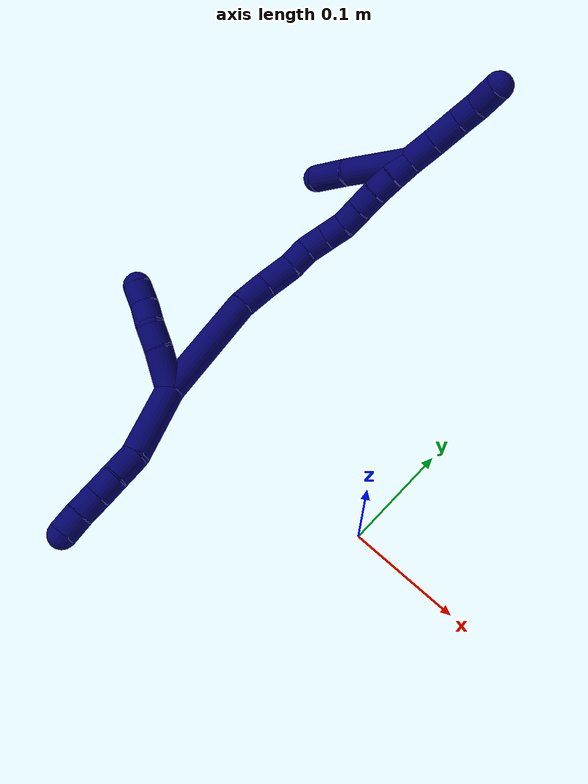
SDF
<sdf version="1.7">
 <world name="default">
  <model name="7">
   <static>0</static>
   <link name="7">
    <collision name="collision-cylinder-e_1_2_8">
     <pose>0.025501 0.000623 -0.02024 -3.1108 0.899678 -3.07784</pose>
     <geometry><cylinder><radius>0.0125</radius><length>0.065126</length></cylinder></geometry>
     <surface>
      <friction><ode><mu>1.16</mu><mu2>1.16</mu2><slip1>0</slip1><slip2>0</slip2></ode></friction>
      <contact><ode><kp>1e+06</kp><kd>1</kd><max_vel>0</max_vel><min_depth>0.001</min_depth></ode></contact>
     </surface>
    </collision>
    <visual name="visual-cylinder-e_1_2_8">
     <pose>0.025501 0.000623 -0.02024 -3.1108 0.899678 -3.07784</pose>
     <geometry><cylinder><radius>0.0125</radius><length>0.065126</length></cylinder></geometry>
     <material><ambient>0.003922 0 0.403922 1</ambient></material>
    </visual>
    <collision name="collision-cylinder-e_2_8_9">
     <pose>0.059065 -0.001318 -0.049133 2.85348 0.729151 2.41512</pose>
     <geometry><cylinder><radius>0.0125</radius><length>0.024205</length></cylinder></geometry>
     <surface>
      <friction><ode><mu>1.16</mu><mu2>1.16</mu2><slip1>0</slip1><slip2>0</slip2></ode></friction>
      <contact><ode><kp>1e+06</kp><kd>1</kd><max_vel>0</max_vel><min_depth>0.001</min_depth></ode></contact>
     </surface>
    </collision>
    <visual name="visual-cylinder-e_2_8_9">
     <pose>0.059065 -0.001318 -0.049133 2.85348 0.729151 2.41512</pose>
     <geometry><cylinder><radius>0.0125</radius><length>0.024205</length></cylinder></geometry>
     <material><ambient>0.003922 0 0.403922 1</ambient></material>
    </visual>
    <collision name="collision-cylinder-e_3_9_10">
     <pose>0.072876 -0.005697 -0.066105 2.92678 0.59387 2.464</pose>
     <geometry><cylinder><radius>0.0125</radius><length>0.020546</length></cylinder></geometry>
     <surface>
      <friction><ode><mu>1.16</mu><mu2>1.16</mu2><slip1>0</slip1><slip2>0</slip2></ode></friction>
      <contact><ode><kp>1e+06</kp><kd>1</kd><max_vel>0</max_vel><min_depth>0.001</min_depth></ode></contact>
     </surface>
    </collision>
    <visual name="visual-cylinder-e_3_9_10">
     <pose>0.072876 -0.005697 -0.066105 2.92678 0.59387 2.464</pose>
     <geometry><cylinder><radius>0.0125</radius><length>0.020546</length></cylinder></geometry>
     <material><ambient>0.003922 0 0.403922 1</ambient></material>
    </visual>
    <collision name="collision-cylinder-e_4_10_11">
     <pose>0.084166 -0.009487 -0.082574 2.90387 0.583923 2.38514</pose>
     <geometry><cylinder><radius>0.0125</radius><length>0.020104</length></cylinder></geometry>
     <surface>
      <friction><ode><mu>1.16</mu><mu2>1.16</mu2><slip1>0</slip1><slip2>0</slip2></ode></friction>
      <contact><ode><kp>1e+06</kp><kd>1</kd><max_vel>0</max_vel><min_depth>0.001</min_depth></ode></contact>
     </surface>
    </collision>
    <visual name="visual-cylinder-e_4_10_11">
     <pose>0.084166 -0.009487 -0.082574 2.90387 0.583923 2.38514</pose>
     <geometry><cylinder><radius>0.0125</radius><length>0.020104</length></cylinder></geometry>
     <material><ambient>0.003922 0 0.403922 1</ambient></material>
    </visual>
    <collision name="collision-cylinder-e_5_11_6">
     <pose>0.095665 -0.012883 -0.098643 2.96407 0.637353 2.61463</pose>
     <geometry><cylinder><radius>0.0125</radius><length>0.020019</length></cylinder></geometry>
     <surface>
      <friction><ode><mu>1.16</mu><mu2>1.16</mu2><slip1>0</slip1><slip2>0</slip2></ode></friction>
      <contact><ode><kp>1e+06</kp><kd>1</kd><max_vel>0</max_vel><min_depth>0.001</min_depth></ode></contact>
     </surface>
    </collision>
    <visual name="visual-cylinder-e_5_11_6">
     <pose>0.095665 -0.012883 -0.098643 2.96407 0.637353 2.61463</pose>
     <geometry><cylinder><radius>0.0125</radius><length>0.020019</length></cylinder></geometry>
     <material><ambient>0.003922 0 0.403922 1</ambient></material>
    </visual>
    <collision name="collision-cylinder-e_1_2_12">
     <pose>-0.009164 -0.013481 0.008458 1.01047 -0.52244 -0.293601</pose>
     <geometry><cylinder><radius>0.0125</radius><length>0.036728</length></cylinder></geometry>
     <surface>
      <friction><ode><mu>1.16</mu><mu2>1.16</mu2><slip1>0</slip1><slip2>0</slip2></ode></friction>
      <contact><ode><kp>1e+06</kp><kd>1</kd><max_vel>0</max_vel><min_depth>0.001</min_depth></ode></contact>
     </surface>
    </collision>
    <visual name="visual-cylinder-e_1_2_12">
     <pose>-0.009164 -0.013481 0.008458 1.01047 -0.52244 -0.293601</pose>
     <geometry><cylinder><radius>0.0125</radius><length>0.036728</length></cylinder></geometry>
     <material><ambient>0.003922 0 0.403922 1</ambient></material>
    </visual>
    <collision name="collision-cylinder-e_2_12_13">
     <pose>-0.024419 -0.035015 0.020721 1.12937 -0.599832 -0.386909</pose>
     <geometry><cylinder><radius>0.0125</radius><length>0.021582</length></cylinder></geometry>
     <surface>
      <friction><ode><mu>1.16</mu><mu2>1.16</mu2><slip1>0</slip1><slip2>0</slip2></ode></friction>
      <contact><ode><kp>1e+06</kp><kd>1</kd><max_vel>0</max_vel><min_depth>0.001</min_depth></ode></contact>
     </surface>
    </collision>
    <visual name="visual-cylinder-e_2_12_13">
     <pose>-0.024419 -0.035015 0.020721 1.12937 -0.599832 -0.386909</pose>
     <geometry><cylinder><radius>0.0125</radius><length>0.021582</length></cylinder></geometry>
     <material><ambient>0.003922 0 0.403922 1</ambient></material>
    </visual>
    <collision name="collision-cylinder-e_3_13_14">
     <pose>-0.038921 -0.048834 0.026724 1.20663 -0.937844 -0.671676</pose>
     <geometry><cylinder><radius>0.0125</radius><length>0.020863</length></cylinder></geometry>
     <surface>
      <friction><ode><mu>1.16</mu><mu2>1.16</mu2><slip1>0</slip1><slip2>0</slip2></ode></friction>
      <contact><ode><kp>1e+06</kp><kd>1</kd><max_vel>0</max_vel><min_depth>0.001</min_depth></ode></contact>
     </surface>
    </collision>
    <visual name="visual-cylinder-e_3_13_14">
     <pose>-0.038921 -0.048834 0.026724 1.20663 -0.937844 -0.671676</pose>
     <geometry><cylinder><radius>0.0125</radius><length>0.020863</length></cylinder></geometry>
     <material><ambient>0.003922 0 0.403922 1</ambient></material>
    </visual>
    <collision name="collision-cylinder-e_4_14_5">
     <pose>-0.05481 -0.061493 0.031156 1.25745 -0.80115 -0.597436</pose>
     <geometry><cylinder><radius>0.0125</radius><length>0.020828</length></cylinder></geometry>
     <surface>
      <friction><ode><mu>1.16</mu><mu2>1.16</mu2><slip1>0</slip1><slip2>0</slip2></ode></friction>
      <contact><ode><kp>1e+06</kp><kd>1</kd><max_vel>0</max_vel><min_depth>0.001</min_depth></ode></contact>
     </surface>
    </collision>
    <visual name="visual-cylinder-e_4_14_5">
     <pose>-0.05481 -0.061493 0.031156 1.25745 -0.80115 -0.597436</pose>
     <geometry><cylinder><radius>0.0125</radius><length>0.020828</length></cylinder></geometry>
     <material><ambient>0.003922 0 0.403922 1</ambient></material>
    </visual>
    <collision name="collision-cylinder-e_1_2_15">
     <pose>-0.033929 0.007472 0.036779 -0.200428 -0.735048 0.077389</pose>
     <geometry><cylinder><radius>0.0125</radius><length>0.101187</length></cylinder></geometry>
     <surface>
      <friction><ode><mu>1.16</mu><mu2>1.16</mu2><slip1>0</slip1><slip2>0</slip2></ode></friction>
      <contact><ode><kp>1e+06</kp><kd>1</kd><max_vel>0</max_vel><min_depth>0.001</min_depth></ode></contact>
     </surface>
    </collision>
    <visual name="visual-cylinder-e_1_2_15">
     <pose>-0.033929 0.007472 0.036779 -0.200428 -0.735048 0.077389</pose>
     <geometry><cylinder><radius>0.0125</radius><length>0.101187</length></cylinder></geometry>
     <material><ambient>0.003922 0 0.403922 1</ambient></material>
    </visual>
    <collision name="collision-cylinder-e_2_15_16">
     <pose>-0.075401 0.019138 0.084865 -0.355193 -0.558916 0.102923</pose>
     <geometry><cylinder><radius>0.0125</radius><length>0.028448</length></cylinder></geometry>
     <surface>
      <friction><ode><mu>1.16</mu><mu2>1.16</mu2><slip1>0</slip1><slip2>0</slip2></ode></friction>
      <contact><ode><kp>1e+06</kp><kd>1</kd><max_vel>0</max_vel><min_depth>0.001</min_depth></ode></contact>
     </surface>
    </collision>
    <visual name="visual-cylinder-e_2_15_16">
     <pose>-0.075401 0.019138 0.084865 -0.355193 -0.558916 0.102923</pose>
     <geometry><cylinder><radius>0.0125</radius><length>0.028448</length></cylinder></geometry>
     <material><ambient>0.003922 0 0.403922 1</ambient></material>
    </visual>
    <collision name="collision-cylinder-e_3_16_17">
     <pose>-0.088591 0.027925 0.108771 -0.349605 -0.39858 0.071308</pose>
     <geometry><cylinder><radius>0.0125</radius><length>0.029102</length></cylinder></geometry>
     <surface>
      <friction><ode><mu>1.16</mu><mu2>1.16</mu2><slip1>0</slip1><slip2>0</slip2></ode></friction>
      <contact><ode><kp>1e+06</kp><kd>1</kd><max_vel>0</max_vel><min_depth>0.001</min_depth></ode></contact>
     </surface>
    </collision>
    <visual name="visual-cylinder-e_3_16_17">
     <pose>-0.088591 0.027925 0.108771 -0.349605 -0.39858 0.071308</pose>
     <geometry><cylinder><radius>0.0125</radius><length>0.029102</length></cylinder></geometry>
     <material><ambient>0.003922 0 0.403922 1</ambient></material>
    </visual>
    <collision name="collision-cylinder-e_4_17_18">
     <pose>-0.098394 0.034141 0.130601 -0.173943 -0.41734 0.036922</pose>
     <geometry><cylinder><radius>0.0125</radius><length>0.020506</length></cylinder></geometry>
     <surface>
      <friction><ode><mu>1.16</mu><mu2>1.16</mu2><slip1>0</slip1><slip2>0</slip2></ode></friction>
      <contact><ode><kp>1e+06</kp><kd>1</kd><max_vel>0</max_vel><min_depth>0.001</min_depth></ode></contact>
     </surface>
    </collision>
    <visual name="visual-cylinder-e_4_17_18">
     <pose>-0.098394 0.034141 0.130601 -0.173943 -0.41734 0.036922</pose>
     <geometry><cylinder><radius>0.0125</radius><length>0.020506</length></cylinder></geometry>
     <material><ambient>0.003922 0 0.403922 1</ambient></material>
    </visual>
    <collision name="collision-cylinder-e_5_18_19">
     <pose>-0.10418 0.038957 0.149467 -0.320148 -0.159273 0.025769</pose>
     <geometry><cylinder><radius>0.0125</radius><length>0.020559</length></cylinder></geometry>
     <surface>
      <friction><ode><mu>1.16</mu><mu2>1.16</mu2><slip1>0</slip1><slip2>0</slip2></ode></friction>
      <contact><ode><kp>1e+06</kp><kd>1</kd><max_vel>0</max_vel><min_depth>0.001</min_depth></ode></contact>
     </surface>
    </collision>
    <visual name="visual-cylinder-e_5_18_19">
     <pose>-0.10418 0.038957 0.149467 -0.320148 -0.159273 0.025769</pose>
     <geometry><cylinder><radius>0.0125</radius><length>0.020559</length></cylinder></geometry>
     <material><ambient>0.003922 0 0.403922 1</ambient></material>
    </visual>
    <collision name="collision-cylinder-e_6_19_20">
     <pose>-0.106392 0.045019 0.168755 -0.28877 -0.057669 0.008387</pose>
     <geometry><cylinder><radius>0.0125</radius><length>0.020178</length></cylinder></geometry>
     <surface>
      <friction><ode><mu>1.16</mu><mu2>1.16</mu2><slip1>0</slip1><slip2>0</slip2></ode></friction>
      <contact><ode><kp>1e+06</kp><kd>1</kd><max_vel>0</max_vel><min_depth>0.001</min_depth></ode></contact>
     </surface>
    </collision>
    <visual name="visual-cylinder-e_6_19_20">
     <pose>-0.106392 0.045019 0.168755 -0.28877 -0.057669 0.008387</pose>
     <geometry><cylinder><radius>0.0125</radius><length>0.020178</length></cylinder></geometry>
     <material><ambient>0.003922 0 0.403922 1</ambient></material>
    </visual>
    <collision name="collision-cylinder-e_7_20_21">
     <pose>-0.10716 0.048353 0.188401 -0.046576 -0.018638 0.000434</pose>
     <geometry><cylinder><radius>0.0125</radius><length>0.020007</length></cylinder></geometry>
     <surface>
      <friction><ode><mu>1.16</mu><mu2>1.16</mu2><slip1>0</slip1><slip2>0</slip2></ode></friction>
      <contact><ode><kp>1e+06</kp><kd>1</kd><max_vel>0</max_vel><min_depth>0.001</min_depth></ode></contact>
     </surface>
    </collision>
    <visual name="visual-cylinder-e_7_20_21">
     <pose>-0.10716 0.048353 0.188401 -0.046576 -0.018638 0.000434</pose>
     <geometry><cylinder><radius>0.0125</radius><length>0.020007</length></cylinder></geometry>
     <material><ambient>0.003922 0 0.403922 1</ambient></material>
    </visual>
    <collision name="collision-cylinder-e_8_21_22">
     <pose>-0.107567 0.049284 0.208384 -0.046498 -0.022013 0.000512</pose>
     <geometry><cylinder><radius>0.0125</radius><length>0.02001</length></cylinder></geometry>
     <surface>
      <friction><ode><mu>1.16</mu><mu2>1.16</mu2><slip1>0</slip1><slip2>0</slip2></ode></friction>
      <contact><ode><kp>1e+06</kp><kd>1</kd><max_vel>0</max_vel><min_depth>0.001</min_depth></ode></contact>
     </surface>
    </collision>
    <visual name="visual-cylinder-e_8_21_22">
     <pose>-0.107567 0.049284 0.208384 -0.046498 -0.022013 0.000512</pose>
     <geometry><cylinder><radius>0.0125</radius><length>0.02001</length></cylinder></geometry>
     <material><ambient>0.003922 0 0.403922 1</ambient></material>
    </visual>
    <collision name="collision-cylinder-e_9_22_23">
     <pose>-0.108466 0.051024 0.228271 -0.1282 -0.068005 0.004367</pose>
     <geometry><cylinder><radius>0.0125</radius><length>0.020001</length></cylinder></geometry>
     <surface>
      <friction><ode><mu>1.16</mu><mu2>1.16</mu2><slip1>0</slip1><slip2>0</slip2></ode></friction>
      <contact><ode><kp>1e+06</kp><kd>1</kd><max_vel>0</max_vel><min_depth>0.001</min_depth></ode></contact>
     </surface>
    </collision>
    <visual name="visual-cylinder-e_9_22_23">
     <pose>-0.108466 0.051024 0.228271 -0.1282 -0.068005 0.004367</pose>
     <geometry><cylinder><radius>0.0125</radius><length>0.020001</length></cylinder></geometry>
     <material><ambient>0.003922 0 0.403922 1</ambient></material>
    </visual>
    <collision name="collision-cylinder-e_10_23_1">
     <pose>-0.110533 0.053953 0.247932 -0.167649 -0.139093 0.011706</pose>
     <geometry><cylinder><radius>0.0125</radius><length>0.020002</length></cylinder></geometry>
     <surface>
      <friction><ode><mu>1.16</mu><mu2>1.16</mu2><slip1>0</slip1><slip2>0</slip2></ode></friction>
      <contact><ode><kp>1e+06</kp><kd>1</kd><max_vel>0</max_vel><min_depth>0.001</min_depth></ode></contact>
     </surface>
    </collision>
    <visual name="visual-cylinder-e_10_23_1">
     <pose>-0.110533 0.053953 0.247932 -0.167649 -0.139093 0.011706</pose>
     <geometry><cylinder><radius>0.0125</radius><length>0.020002</length></cylinder></geometry>
     <material><ambient>0.003922 0 0.403922 1</ambient></material>
    </visual>
    <collision name="collision-cylinder-e_1_1_24">
     <pose>-0.126312 0.040906 0.233818 2.58983 -0.474201 -1.41312</pose>
     <geometry><cylinder><radius>0.0125</radius><length>0.063038</length></cylinder></geometry>
     <surface>
      <friction><ode><mu>1.16</mu><mu2>1.16</mu2><slip1>0</slip1><slip2>0</slip2></ode></friction>
      <contact><ode><kp>1e+06</kp><kd>1</kd><max_vel>0</max_vel><min_depth>0.001</min_depth></ode></contact>
     </surface>
    </collision>
    <visual name="visual-cylinder-e_1_1_24">
     <pose>-0.126312 0.040906 0.233818 2.58983 -0.474201 -1.41312</pose>
     <geometry><cylinder><radius>0.0125</radius><length>0.063038</length></cylinder></geometry>
     <material><ambient>0.003922 0 0.403922 1</ambient></material>
    </visual>
    <collision name="collision-cylinder-e_2_24_4">
     <pose>-0.151437 0.019711 0.196368 2.69512 -0.619646 -1.90791</pose>
     <geometry><cylinder><radius>0.0125</radius><length>0.036962</length></cylinder></geometry>
     <surface>
      <friction><ode><mu>1.16</mu><mu2>1.16</mu2><slip1>0</slip1><slip2>0</slip2></ode></friction>
      <contact><ode><kp>1e+06</kp><kd>1</kd><max_vel>0</max_vel><min_depth>0.001</min_depth></ode></contact>
     </surface>
    </collision>
    <visual name="visual-cylinder-e_2_24_4">
     <pose>-0.151437 0.019711 0.196368 2.69512 -0.619646 -1.90791</pose>
     <geometry><cylinder><radius>0.0125</radius><length>0.036962</length></cylinder></geometry>
     <material><ambient>0.003922 0 0.403922 1</ambient></material>
    </visual>
    <collision name="collision-cylinder-e_1_1_25">
     <pose>-0.112134 0.057998 0.270478 -0.185083 -0.016498 0.001531</pose>
     <geometry><cylinder><radius>0.0125</radius><length>0.026007</length></cylinder></geometry>
     <surface>
      <friction><ode><mu>1.16</mu><mu2>1.16</mu2><slip1>0</slip1><slip2>0</slip2></ode></friction>
      <contact><ode><kp>1e+06</kp><kd>1</kd><max_vel>0</max_vel><min_depth>0.001</min_depth></ode></contact>
     </surface>
    </collision>
    <visual name="visual-cylinder-e_1_1_25">
     <pose>-0.112134 0.057998 0.270478 -0.185083 -0.016498 0.001531</pose>
     <geometry><cylinder><radius>0.0125</radius><length>0.026007</length></cylinder></geometry>
     <material><ambient>0.003922 0 0.403922 1</ambient></material>
    </visual>
    <collision name="collision-cylinder-e_2_25_26">
     <pose>-0.111736 0.062373 0.297103 -0.142223 0.043718 -0.003115</pose>
     <geometry><cylinder><radius>0.0125</radius><length>0.028</length></cylinder></geometry>
     <surface>
      <friction><ode><mu>1.16</mu><mu2>1.16</mu2><slip1>0</slip1><slip2>0</slip2></ode></friction>
      <contact><ode><kp>1e+06</kp><kd>1</kd><max_vel>0</max_vel><min_depth>0.001</min_depth></ode></contact>
     </surface>
    </collision>
    <visual name="visual-cylinder-e_2_25_26">
     <pose>-0.111736 0.062373 0.297103 -0.142223 0.043718 -0.003115</pose>
     <geometry><cylinder><radius>0.0125</radius><length>0.028</length></cylinder></geometry>
     <material><ambient>0.003922 0 0.403922 1</ambient></material>
    </visual>
    <collision name="collision-cylinder-e_3_26_27">
     <pose>-0.109218 0.06549 0.320932 -0.113085 0.187559 -0.010648</pose>
     <geometry><cylinder><radius>0.0125</radius><length>0.020456</length></cylinder></geometry>
     <surface>
      <friction><ode><mu>1.16</mu><mu2>1.16</mu2><slip1>0</slip1><slip2>0</slip2></ode></friction>
      <contact><ode><kp>1e+06</kp><kd>1</kd><max_vel>0</max_vel><min_depth>0.001</min_depth></ode></contact>
     </surface>
    </collision>
    <visual name="visual-cylinder-e_3_26_27">
     <pose>-0.109218 0.06549 0.320932 -0.113085 0.187559 -0.010648</pose>
     <geometry><cylinder><radius>0.0125</radius><length>0.020456</length></cylinder></geometry>
     <material><ambient>0.003922 0 0.403922 1</ambient></material>
    </visual>
    <collision name="collision-cylinder-e_4_27_3">
     <pose>-0.102056 0.066108 0.342543 0.044355 0.424126 0.009551</pose>
     <geometry><cylinder><radius>0.0125</radius><length>0.025537</length></cylinder></geometry>
     <surface>
      <friction><ode><mu>1.16</mu><mu2>1.16</mu2><slip1>0</slip1><slip2>0</slip2></ode></friction>
      <contact><ode><kp>1e+06</kp><kd>1</kd><max_vel>0</max_vel><min_depth>0.001</min_depth></ode></contact>
     </surface>
    </collision>
    <visual name="visual-cylinder-e_4_27_3">
     <pose>-0.102056 0.066108 0.342543 0.044355 0.424126 0.009551</pose>
     <geometry><cylinder><radius>0.0125</radius><length>0.025537</length></cylinder></geometry>
     <material><ambient>0.003922 0 0.403922 1</ambient></material>
    </visual>
    <collision name="collision-sphere-3">
     <pose>-0.096801 0.065592 0.354168 0 -0 0</pose>
     <geometry><sphere><radius>0.0125</radius></sphere></geometry>
     <surface>
      <friction><ode><mu>1.16</mu><mu2>1.16</mu2><slip1>0</slip1><slip2>0</slip2></ode></friction>
      <contact><ode><kp>1e+06</kp><kd>1</kd><max_vel>0</max_vel><min_depth>0.001</min_depth></ode></contact>
     </surface>
    </collision>
    <visual name="visual-sphere-3">
     <pose>-0.096801 0.065592 0.354168 0 -0 0</pose>
     <geometry><sphere><radius>0.0125</radius></sphere></geometry>
     <material><ambient>0.003922 0 0.403922 1</ambient></material>
    </visual>
    <collision name="collision-sphere-27">
     <pose>-0.10731 0.066624 0.330917 0 -0 0</pose>
     <geometry><sphere><radius>0.0125</radius></sphere></geometry>
     <surface>
      <friction><ode><mu>1.16</mu><mu2>1.16</mu2><slip1>0</slip1><slip2>0</slip2></ode></friction>
      <contact><ode><kp>1e+06</kp><kd>1</kd><max_vel>0</max_vel><min_depth>0.001</min_depth></ode></contact>
     </surface>
    </collision>
    <visual name="visual-sphere-27">
     <pose>-0.10731 0.066624 0.330917 0 -0 0</pose>
     <geometry><sphere><radius>0.0125</radius></sphere></geometry>
     <material><ambient>0.003922 0 0.403922 1</ambient></material>
    </visual>
    <collision name="collision-sphere-26">
     <pose>-0.111125 0.064356 0.310948 0 -0 0</pose>
     <geometry><sphere><radius>0.0125</radius></sphere></geometry>
     <surface>
      <friction><ode><mu>1.16</mu><mu2>1.16</mu2><slip1>0</slip1><slip2>0</slip2></ode></friction>
      <contact><ode><kp>1e+06</kp><kd>1</kd><max_vel>0</max_vel><min_depth>0.001</min_depth></ode></contact>
     </surface>
    </collision>
    <visual name="visual-sphere-26">
     <pose>-0.111125 0.064356 0.310948 0 -0 0</pose>
     <geometry><sphere><radius>0.0125</radius></sphere></geometry>
     <material><ambient>0.003922 0 0.403922 1</ambient></material>
    </visual>
    <collision name="collision-sphere-25">
     <pose>-0.112348 0.060391 0.283258 0 -0 0</pose>
     <geometry><sphere><radius>0.0125</radius></sphere></geometry>
     <surface>
      <friction><ode><mu>1.16</mu><mu2>1.16</mu2><slip1>0</slip1><slip2>0</slip2></ode></friction>
      <contact><ode><kp>1e+06</kp><kd>1</kd><max_vel>0</max_vel><min_depth>0.001</min_depth></ode></contact>
     </surface>
    </collision>
    <visual name="visual-sphere-25">
     <pose>-0.112348 0.060391 0.283258 0 -0 0</pose>
     <geometry><sphere><radius>0.0125</radius></sphere></geometry>
     <material><ambient>0.003922 0 0.403922 1</ambient></material>
    </visual>
    <collision name="collision-sphere-4">
     <pose>-0.16217 0.013215 0.182798 0 -0 0</pose>
     <geometry><sphere><radius>0.0125</radius></sphere></geometry>
     <surface>
      <friction><ode><mu>1.16</mu><mu2>1.16</mu2><slip1>0</slip1><slip2>0</slip2></ode></friction>
      <contact><ode><kp>1e+06</kp><kd>1</kd><max_vel>0</max_vel><min_depth>0.001</min_depth></ode></contact>
     </surface>
    </collision>
    <visual name="visual-sphere-4">
     <pose>-0.16217 0.013215 0.182798 0 -0 0</pose>
     <geometry><sphere><radius>0.0125</radius></sphere></geometry>
     <material><ambient>0.003922 0 0.403922 1</ambient></material>
    </visual>
    <collision name="collision-sphere-24">
     <pose>-0.140704 0.026208 0.209938 0 -0 0</pose>
     <geometry><sphere><radius>0.0125</radius></sphere></geometry>
     <surface>
      <friction><ode><mu>1.16</mu><mu2>1.16</mu2><slip1>0</slip1><slip2>0</slip2></ode></friction>
      <contact><ode><kp>1e+06</kp><kd>1</kd><max_vel>0</max_vel><min_depth>0.001</min_depth></ode></contact>
     </surface>
    </collision>
    <visual name="visual-sphere-24">
     <pose>-0.140704 0.026208 0.209938 0 -0 0</pose>
     <geometry><sphere><radius>0.0125</radius></sphere></geometry>
     <material><ambient>0.003922 0 0.403922 1</ambient></material>
    </visual>
    <collision name="collision-sphere-1">
     <pose>-0.111919 0.055605 0.257698 0 -0 0</pose>
     <geometry><sphere><radius>0.0125</radius></sphere></geometry>
     <surface>
      <friction><ode><mu>1.16</mu><mu2>1.16</mu2><slip1>0</slip1><slip2>0</slip2></ode></friction>
      <contact><ode><kp>1e+06</kp><kd>1</kd><max_vel>0</max_vel><min_depth>0.001</min_depth></ode></contact>
     </surface>
    </collision>
    <visual name="visual-sphere-1">
     <pose>-0.111919 0.055605 0.257698 0 -0 0</pose>
     <geometry><sphere><radius>0.0125</radius></sphere></geometry>
     <material><ambient>0.003922 0 0.403922 1</ambient></material>
    </visual>
    <collision name="collision-sphere-23">
     <pose>-0.109146 0.0523 0.238166 0 -0 0</pose>
     <geometry><sphere><radius>0.0125</radius></sphere></geometry>
     <surface>
      <friction><ode><mu>1.16</mu><mu2>1.16</mu2><slip1>0</slip1><slip2>0</slip2></ode></friction>
      <contact><ode><kp>1e+06</kp><kd>1</kd><max_vel>0</max_vel><min_depth>0.001</min_depth></ode></contact>
     </surface>
    </collision>
    <visual name="visual-sphere-23">
     <pose>-0.109146 0.0523 0.238166 0 -0 0</pose>
     <geometry><sphere><radius>0.0125</radius></sphere></geometry>
     <material><ambient>0.003922 0 0.403922 1</ambient></material>
    </visual>
    <collision name="collision-sphere-22">
     <pose>-0.107787 0.049749 0.218376 0 -0 0</pose>
     <geometry><sphere><radius>0.0125</radius></sphere></geometry>
     <surface>
      <friction><ode><mu>1.16</mu><mu2>1.16</mu2><slip1>0</slip1><slip2>0</slip2></ode></friction>
      <contact><ode><kp>1e+06</kp><kd>1</kd><max_vel>0</max_vel><min_depth>0.001</min_depth></ode></contact>
     </surface>
    </collision>
    <visual name="visual-sphere-22">
     <pose>-0.107787 0.049749 0.218376 0 -0 0</pose>
     <geometry><sphere><radius>0.0125</radius></sphere></geometry>
     <material><ambient>0.003922 0 0.403922 1</ambient></material>
    </visual>
    <collision name="collision-sphere-21">
     <pose>-0.107346 0.048819 0.198392 0 -0 0</pose>
     <geometry><sphere><radius>0.0125</radius></sphere></geometry>
     <surface>
      <friction><ode><mu>1.16</mu><mu2>1.16</mu2><slip1>0</slip1><slip2>0</slip2></ode></friction>
      <contact><ode><kp>1e+06</kp><kd>1</kd><max_vel>0</max_vel><min_depth>0.001</min_depth></ode></contact>
     </surface>
    </collision>
    <visual name="visual-sphere-21">
     <pose>-0.107346 0.048819 0.198392 0 -0 0</pose>
     <geometry><sphere><radius>0.0125</radius></sphere></geometry>
     <material><ambient>0.003922 0 0.403922 1</ambient></material>
    </visual>
    <collision name="collision-sphere-6">
     <pose>0.101621 -0.014303 -0.106561 0 -0 0</pose>
     <geometry><sphere><radius>0.0125</radius></sphere></geometry>
     <surface>
      <friction><ode><mu>1.16</mu><mu2>1.16</mu2><slip1>0</slip1><slip2>0</slip2></ode></friction>
      <contact><ode><kp>1e+06</kp><kd>1</kd><max_vel>0</max_vel><min_depth>0.001</min_depth></ode></contact>
     </surface>
    </collision>
    <visual name="visual-sphere-6">
     <pose>0.101621 -0.014303 -0.106561 0 -0 0</pose>
     <geometry><sphere><radius>0.0125</radius></sphere></geometry>
     <material><ambient>0.003922 0 0.403922 1</ambient></material>
    </visual>
    <collision name="collision-sphere-11">
     <pose>0.089708 -0.011462 -0.090725 0 -0 0</pose>
     <geometry><sphere><radius>0.0125</radius></sphere></geometry>
     <surface>
      <friction><ode><mu>1.16</mu><mu2>1.16</mu2><slip1>0</slip1><slip2>0</slip2></ode></friction>
      <contact><ode><kp>1e+06</kp><kd>1</kd><max_vel>0</max_vel><min_depth>0.001</min_depth></ode></contact>
     </surface>
    </collision>
    <visual name="visual-sphere-11">
     <pose>0.089708 -0.011462 -0.090725 0 -0 0</pose>
     <geometry><sphere><radius>0.0125</radius></sphere></geometry>
     <material><ambient>0.003922 0 0.403922 1</ambient></material>
    </visual>
    <collision name="collision-sphere-10">
     <pose>0.078625 -0.007512 -0.074423 0 -0 0</pose>
     <geometry><sphere><radius>0.0125</radius></sphere></geometry>
     <surface>
      <friction><ode><mu>1.16</mu><mu2>1.16</mu2><slip1>0</slip1><slip2>0</slip2></ode></friction>
      <contact><ode><kp>1e+06</kp><kd>1</kd><max_vel>0</max_vel><min_depth>0.001</min_depth></ode></contact>
     </surface>
    </collision>
    <visual name="visual-sphere-10">
     <pose>0.078625 -0.007512 -0.074423 0 -0 0</pose>
     <geometry><sphere><radius>0.0125</radius></sphere></geometry>
     <material><ambient>0.003922 0 0.403922 1</ambient></material>
    </visual>
    <collision name="collision-sphere-9">
     <pose>0.067128 -0.003882 -0.057787 0 -0 0</pose>
     <geometry><sphere><radius>0.0125</radius></sphere></geometry>
     <surface>
      <friction><ode><mu>1.16</mu><mu2>1.16</mu2><slip1>0</slip1><slip2>0</slip2></ode></friction>
      <contact><ode><kp>1e+06</kp><kd>1</kd><max_vel>0</max_vel><min_depth>0.001</min_depth></ode></contact>
     </surface>
    </collision>
    <visual name="visual-sphere-9">
     <pose>0.067128 -0.003882 -0.057787 0 -0 0</pose>
     <geometry><sphere><radius>0.0125</radius></sphere></geometry>
     <material><ambient>0.003922 0 0.403922 1</ambient></material>
    </visual>
    <collision name="collision-sphere-2">
     <geometry><sphere><radius>0.0125</radius></sphere></geometry>
     <surface>
      <friction><ode><mu>1.16</mu><mu2>1.16</mu2><slip1>0</slip1><slip2>0</slip2></ode></friction>
      <contact><ode><kp>1e+06</kp><kd>1</kd><max_vel>0</max_vel><min_depth>0.001</min_depth></ode></contact>
     </surface>
    </collision>
    <visual name="visual-sphere-2">
     <geometry><sphere><radius>0.0125</radius></sphere></geometry>
     <material><ambient>0.003922 0 0.403922 1</ambient></material>
    </visual>
    <collision name="collision-sphere-19">
     <pose>-0.105811 0.042151 0.1591 0 -0 0</pose>
     <geometry><sphere><radius>0.0125</radius></sphere></geometry>
     <surface>
      <friction><ode><mu>1.16</mu><mu2>1.16</mu2><slip1>0</slip1><slip2>0</slip2></ode></friction>
      <contact><ode><kp>1e+06</kp><kd>1</kd><max_vel>0</max_vel><min_depth>0.001</min_depth></ode></contact>
     </surface>
    </collision>
    <visual name="visual-sphere-19">
     <pose>-0.105811 0.042151 0.1591 0 -0 0</pose>
     <geometry><sphere><radius>0.0125</radius></sphere></geometry>
     <material><ambient>0.003922 0 0.403922 1</ambient></material>
    </visual>
    <collision name="collision-sphere-8">
     <pose>0.051002 0.001247 -0.04048 0 -0 0</pose>
     <geometry><sphere><radius>0.0125</radius></sphere></geometry>
     <surface>
      <friction><ode><mu>1.16</mu><mu2>1.16</mu2><slip1>0</slip1><slip2>0</slip2></ode></friction>
      <contact><ode><kp>1e+06</kp><kd>1</kd><max_vel>0</max_vel><min_depth>0.001</min_depth></ode></contact>
     </surface>
    </collision>
    <visual name="visual-sphere-8">
     <pose>0.051002 0.001247 -0.04048 0 -0 0</pose>
     <geometry><sphere><radius>0.0125</radius></sphere></geometry>
     <material><ambient>0.003922 0 0.403922 1</ambient></material>
    </visual>
    <collision name="collision-sphere-12">
     <pose>-0.018327 -0.026961 0.016916 0 -0 0</pose>
     <geometry><sphere><radius>0.0125</radius></sphere></geometry>
     <surface>
      <friction><ode><mu>1.16</mu><mu2>1.16</mu2><slip1>0</slip1><slip2>0</slip2></ode></friction>
      <contact><ode><kp>1e+06</kp><kd>1</kd><max_vel>0</max_vel><min_depth>0.001</min_depth></ode></contact>
     </surface>
    </collision>
    <visual name="visual-sphere-12">
     <pose>-0.018327 -0.026961 0.016916 0 -0 0</pose>
     <geometry><sphere><radius>0.0125</radius></sphere></geometry>
     <material><ambient>0.003922 0 0.403922 1</ambient></material>
    </visual>
    <collision name="collision-sphere-13">
     <pose>-0.03051 -0.043068 0.024526 0 -0 0</pose>
     <geometry><sphere><radius>0.0125</radius></sphere></geometry>
     <surface>
      <friction><ode><mu>1.16</mu><mu2>1.16</mu2><slip1>0</slip1><slip2>0</slip2></ode></friction>
      <contact><ode><kp>1e+06</kp><kd>1</kd><max_vel>0</max_vel><min_depth>0.001</min_depth></ode></contact>
     </surface>
    </collision>
    <visual name="visual-sphere-13">
     <pose>-0.03051 -0.043068 0.024526 0 -0 0</pose>
     <geometry><sphere><radius>0.0125</radius></sphere></geometry>
     <material><ambient>0.003922 0 0.403922 1</ambient></material>
    </visual>
    <collision name="collision-sphere-14">
     <pose>-0.047331 -0.0546 0.028922 0 -0 0</pose>
     <geometry><sphere><radius>0.0125</radius></sphere></geometry>
     <surface>
      <friction><ode><mu>1.16</mu><mu2>1.16</mu2><slip1>0</slip1><slip2>0</slip2></ode></friction>
      <contact><ode><kp>1e+06</kp><kd>1</kd><max_vel>0</max_vel><min_depth>0.001</min_depth></ode></contact>
     </surface>
    </collision>
    <visual name="visual-sphere-14">
     <pose>-0.047331 -0.0546 0.028922 0 -0 0</pose>
     <geometry><sphere><radius>0.0125</radius></sphere></geometry>
     <material><ambient>0.003922 0 0.403922 1</ambient></material>
    </visual>
    <collision name="collision-sphere-5">
     <pose>-0.062289 -0.068387 0.03339 0 -0 0</pose>
     <geometry><sphere><radius>0.0125</radius></sphere></geometry>
     <surface>
      <friction><ode><mu>1.16</mu><mu2>1.16</mu2><slip1>0</slip1><slip2>0</slip2></ode></friction>
      <contact><ode><kp>1e+06</kp><kd>1</kd><max_vel>0</max_vel><min_depth>0.001</min_depth></ode></contact>
     </surface>
    </collision>
    <visual name="visual-sphere-5">
     <pose>-0.062289 -0.068387 0.03339 0 -0 0</pose>
     <geometry><sphere><radius>0.0125</radius></sphere></geometry>
     <material><ambient>0.003922 0 0.403922 1</ambient></material>
    </visual>
    <collision name="collision-sphere-15">
     <pose>-0.067859 0.014944 0.073558 0 -0 0</pose>
     <geometry><sphere><radius>0.0125</radius></sphere></geometry>
     <surface>
      <friction><ode><mu>1.16</mu><mu2>1.16</mu2><slip1>0</slip1><slip2>0</slip2></ode></friction>
      <contact><ode><kp>1e+06</kp><kd>1</kd><max_vel>0</max_vel><min_depth>0.001</min_depth></ode></contact>
     </surface>
    </collision>
    <visual name="visual-sphere-15">
     <pose>-0.067859 0.014944 0.073558 0 -0 0</pose>
     <geometry><sphere><radius>0.0125</radius></sphere></geometry>
     <material><ambient>0.003922 0 0.403922 1</ambient></material>
    </visual>
    <collision name="collision-sphere-16">
     <pose>-0.082944 0.023332 0.096171 0 -0 0</pose>
     <geometry><sphere><radius>0.0125</radius></sphere></geometry>
     <surface>
      <friction><ode><mu>1.16</mu><mu2>1.16</mu2><slip1>0</slip1><slip2>0</slip2></ode></friction>
      <contact><ode><kp>1e+06</kp><kd>1</kd><max_vel>0</max_vel><min_depth>0.001</min_depth></ode></contact>
     </surface>
    </collision>
    <visual name="visual-sphere-16">
     <pose>-0.082944 0.023332 0.096171 0 -0 0</pose>
     <geometry><sphere><radius>0.0125</radius></sphere></geometry>
     <material><ambient>0.003922 0 0.403922 1</ambient></material>
    </visual>
    <collision name="collision-sphere-17">
     <pose>-0.094238 0.032518 0.12137 0 -0 0</pose>
     <geometry><sphere><radius>0.0125</radius></sphere></geometry>
     <surface>
      <friction><ode><mu>1.16</mu><mu2>1.16</mu2><slip1>0</slip1><slip2>0</slip2></ode></friction>
      <contact><ode><kp>1e+06</kp><kd>1</kd><max_vel>0</max_vel><min_depth>0.001</min_depth></ode></contact>
     </surface>
    </collision>
    <visual name="visual-sphere-17">
     <pose>-0.094238 0.032518 0.12137 0 -0 0</pose>
     <geometry><sphere><radius>0.0125</radius></sphere></geometry>
     <material><ambient>0.003922 0 0.403922 1</ambient></material>
    </visual>
    <collision name="collision-sphere-18">
     <pose>-0.10255 0.035763 0.139833 0 -0 0</pose>
     <geometry><sphere><radius>0.0125</radius></sphere></geometry>
     <surface>
      <friction><ode><mu>1.16</mu><mu2>1.16</mu2><slip1>0</slip1><slip2>0</slip2></ode></friction>
      <contact><ode><kp>1e+06</kp><kd>1</kd><max_vel>0</max_vel><min_depth>0.001</min_depth></ode></contact>
     </surface>
    </collision>
    <visual name="visual-sphere-18">
     <pose>-0.10255 0.035763 0.139833 0 -0 0</pose>
     <geometry><sphere><radius>0.0125</radius></sphere></geometry>
     <material><ambient>0.003922 0 0.403922 1</ambient></material>
    </visual>
    <collision name="collision-sphere-20">
     <pose>-0.106974 0.047887 0.17841 0 -0 0</pose>
     <geometry><sphere><radius>0.0125</radius></sphere></geometry>
     <surface>
      <friction><ode><mu>1.16</mu><mu2>1.16</mu2><slip1>0</slip1><slip2>0</slip2></ode></friction>
      <contact><ode><kp>1e+06</kp><kd>1</kd><max_vel>0</max_vel><min_depth>0.001</min_depth></ode></contact>
     </surface>
    </collision>
    <visual name="visual-sphere-20">
     <pose>-0.106974 0.047887 0.17841 0 -0 0</pose>
     <geometry><sphere><radius>0.0125</radius></sphere></geometry>
     <material><ambient>0.003922 0 0.403922 1</ambient></material>
    </visual>
    <inertial>
     <pose>-0.056275 0.018744 0.110731 0 -0 0</pose>
     <mass>0.75</mass>
     <inertia><ixx>5.2e-05</ixx><ixy>0</ixy><ixz>0</ixz><iyy>0.000133</iyy><iyz>0</iyz><izz>7.9e-05</izz></inertia>
    </inertial>
   </link>
   <pose>-0.188167 -0.034935 0.072 -0.661089 -0.543477 -0.84057</pose>
  </model>
 </world>
</sdf>
